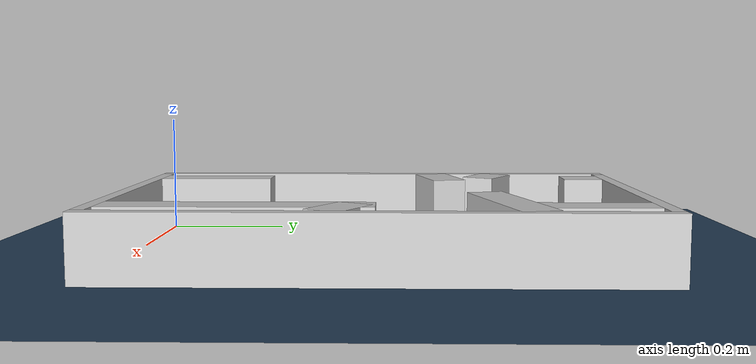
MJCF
<?xml version="1.0" ?>
<mujoco model="generated_real_template">
  <compiler angle="degree"/>
  <option timestep="0.002" integrator="implicitfast" iterations="100" cone="elliptic"/>
  <default>
    <geom density="1"/>
  </default>
  <asset>
    <texture builtin="gradient" height="3072" rgb1="0.3 0.5 0.7" rgb2="0 0 0" type="skybox" width="512"/>
    <texture builtin="checker" height="300" mark="edge" markrgb="0.8 0.8 0.8" name="groundplane" rgb1="0.2 0.3 0.4" rgb2="0.1 0.2 0.3" type="2d" width="300"/>
    <material name="groundplane" reflectance="0.2" texrepeat="5 5" texture="groundplane" texuniform="true"/>
  </asset>
  <worldbody>
    <light dir="0 0 -1" directional="true" pos="0 0 1.5"/>
    <geom name="floor" type="plane" condim="4" friction="0.5 0.005 0.001" material="groundplane" size="0 0 0.05"/>
    <body name="walls">
      <geom name="wall_boundary_left" type="box" condim="4" friction="1.0 0.005 0.0001" rgba="0.8 0.8 0.8 1" pos="-0.010000 0.387500 0.050000" euler="0 0 0.000000" size="0.010000 0.407500 0.050000"/>
      <geom name="wall_boundary_right" type="box" condim="4" friction="1.0 0.005 0.0001" rgba="0.8 0.8 0.8 1" pos="0.500000 0.387500 0.050000" euler="0 0 0.000000" size="0.010000 0.407500 0.050000"/>
      <geom name="wall_boundary_bottom" type="box" condim="4" friction="1.0 0.005 0.0001" rgba="0.8 0.8 0.8 1" pos="0.245000 -0.010000 0.050000" euler="0 0 0.000000" size="0.245000 0.010000 0.050000"/>
      <geom name="wall_boundary_top" type="box" condim="4" friction="1.0 0.005 0.0001" rgba="0.8 0.8 0.8 1" pos="0.245000 0.785000 0.050000" euler="0 0 0.000000" size="0.245000 0.010000 0.050000"/>
      <geom name="wall_inner_1_1" type="box" condim="4" friction="1.0 0.005 0.0001" rgba="0.8 0.8 0.8 1" pos="0.054433 0.492139 0.050000" euler="0 0 14.788221" size="0.056298 0.028500 0.050000"/>
      <geom name="wall_inner_1_2" type="box" condim="4" friction="1.0 0.005 0.0001" rgba="0.8 0.8 0.8 1" pos="0.383799 0.579089 0.050000" euler="0 0 14.788221" size="0.109839 0.028500 0.050000"/>
      <geom name="wall_inner_2_1" type="box" condim="4" friction="1.0 0.005 0.0001" rgba="0.8 0.8 0.8 1" pos="0.062958 0.096135 0.050000" euler="0 0 90.000000" size="0.096135 0.028500 0.050000"/>
      <geom name="wall_inner_2_2" type="box" condim="4" friction="1.0 0.005 0.0001" rgba="0.8 0.8 0.8 1" pos="0.062958 0.741888 0.050000" euler="0 0 90.000000" size="0.033112 0.028500 0.050000"/>
      <geom name="wall_inner_3_1" type="box" condim="4" friction="1.0 0.005 0.0001" rgba="0.8 0.8 0.8 1" pos="0.034446 0.577682 0.050000" euler="0 0 -29.986574" size="0.039769 0.028500 0.050000"/>
      <geom name="wall_inner_3_2" type="box" condim="4" friction="1.0 0.005 0.0001" rgba="0.8 0.8 0.8 1" pos="0.452125 0.336666 0.050000" euler="0 0 -29.986574" size="0.043729 0.028500 0.050000"/>
      <geom name="wall_inner_4_1" type="box" condim="4" friction="1.0 0.005 0.0001" rgba="0.8 0.8 0.8 1" pos="0.429910 0.193023 0.050000" euler="0 0 90.000000" size="0.193023 0.028500 0.050000"/>
      <geom name="wall_inner_4_2" type="box" condim="4" friction="1.0 0.005 0.0001" rgba="0.8 0.8 0.8 1" pos="0.429910 0.686899 0.050000" euler="0 0 90.000000" size="0.088101 0.028500 0.050000"/>
    </body>
  </worldbody>
</mujoco>
